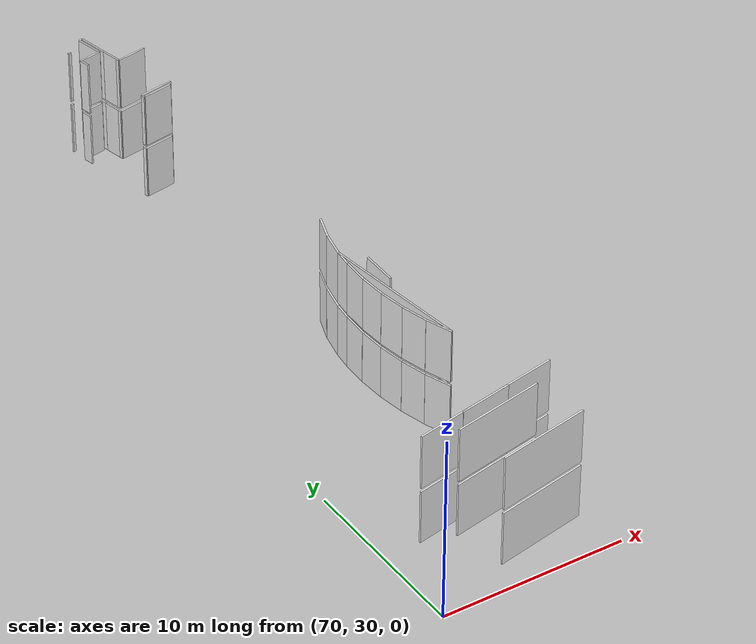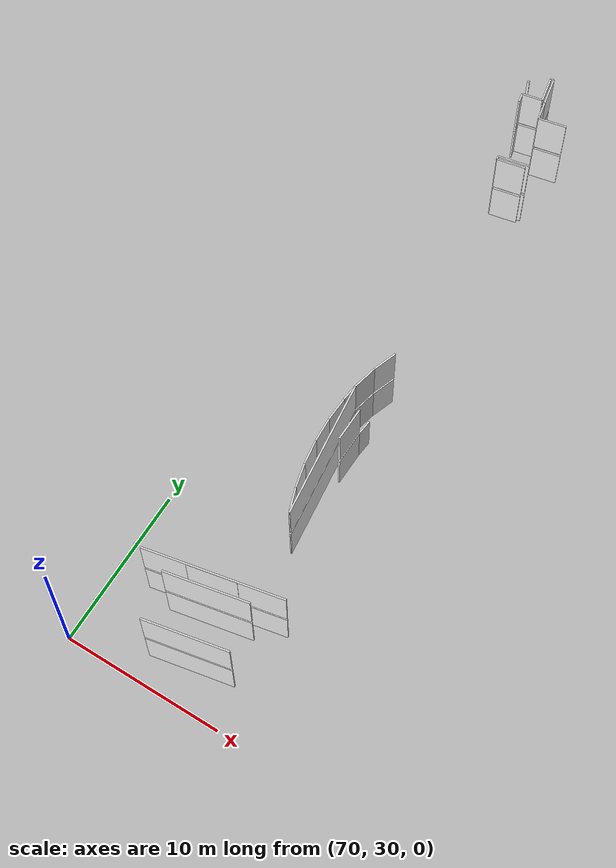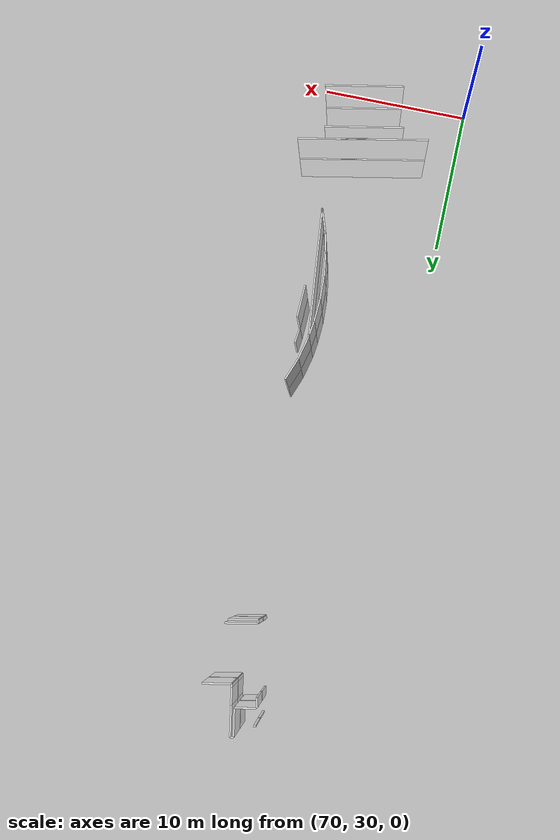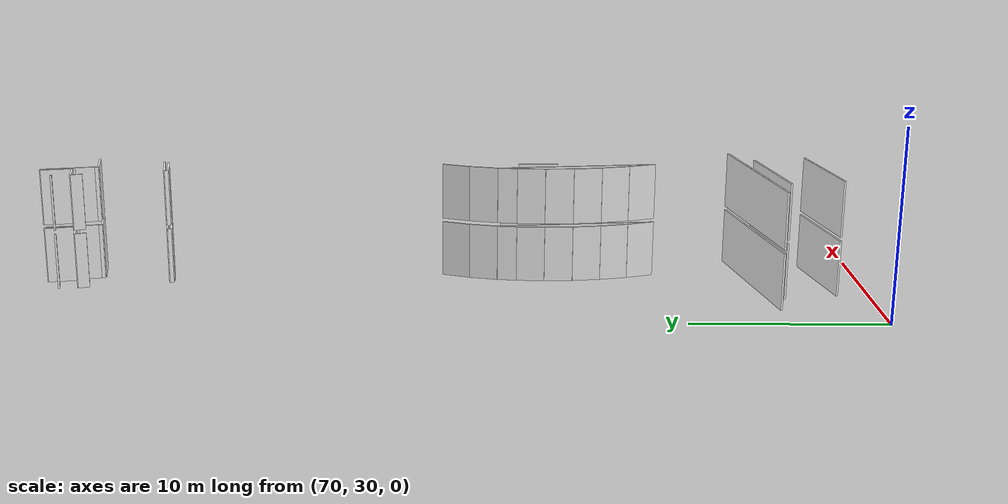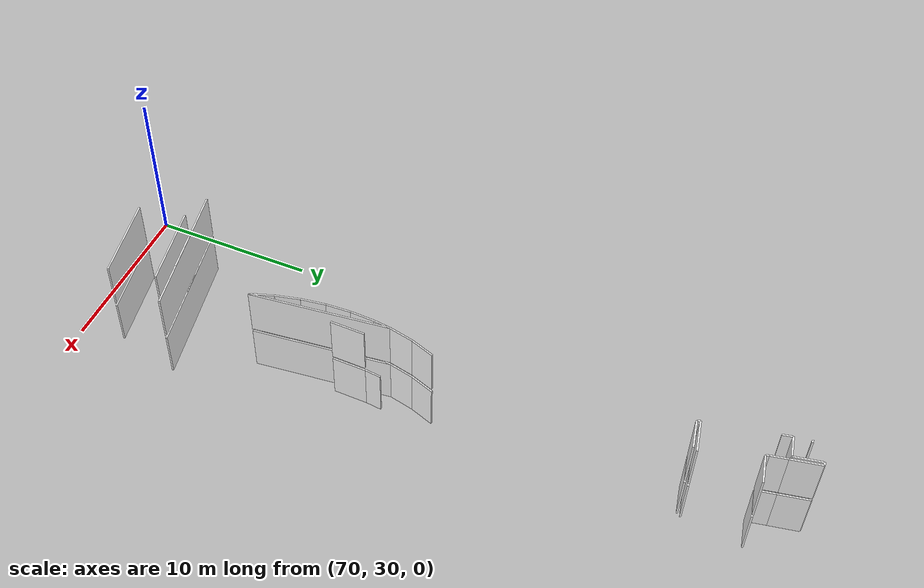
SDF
<sdf version="1.6">
 <world name="default">
  <model name="wall_74.9_72.7_0.0">
   <static>true</static>
   <pose>74.86499999999069 72.69500000006519 1.5 0 0 -2.944197095083166</pose>
   <link name="link">
    <visual name="visual">
     <geometry><box><size>0.15297058539043204 0.1 3</size></box></geometry>
     <material>
      <script><uri>file://media/materials/scripts/gazebo.material</uri><name>Gazebo/White</name></script>
     </material>
    </visual>
   </link>
  </model>
  <model name="wall_75.0_71.4_0.0">
   <static>true</static>
   <pose>75.03999999997905 71.40500000002794 1.5 0 0 1.7714492040023821</pose>
   <link name="link">
    <visual name="visual">
     <geometry><box><size>0.6020797292489833 0.1 3</size></box></geometry>
     <material>
      <script><uri>file://media/materials/scripts/gazebo.material</uri><name>Gazebo/White</name></script>
     </material>
    </visual>
   </link>
  </model>
  <model name="wall_75.6_71.8_0.0">
   <static>true</static>
   <pose>75.61499999999069 71.82500000018626 1.5 0 0 0.1943652660922386</pose>
   <link name="link">
    <visual name="visual">
     <geometry><box><size>1.2943724348298333 0.1 3</size></box></geometry>
     <material>
      <script><uri>file://media/materials/scripts/gazebo.material</uri><name>Gazebo/White</name></script>
     </material>
    </visual>
   </link>
  </model>
  <model name="wall_76.1_72.8_0.0">
   <static>true</static>
   <pose>76.08999999999651 72.75500000012107 1.5 0 0 1.7669971441026713</pose>
   <link name="link">
    <visual name="visual">
     <geometry><box><size>1.6414932225216863 0.1 3</size></box></geometry>
     <material>
      <script><uri>file://media/materials/scripts/gazebo.material</uri><name>Gazebo/White</name></script>
     </material>
    </visual>
   </link>
  </model>
  <model name="wall_77.8_47.2_0.0">
   <static>true</static>
   <pose>77.77999999999884 47.21499999985099 1.5 0 0 1.5516599071002037</pose>
   <link name="link">
    <visual name="visual">
     <geometry><box><size>2.090382739924786 0.1 3</size></box></geometry>
     <material>
      <script><uri>file://media/materials/scripts/gazebo.material</uri><name>Gazebo/White</name></script>
     </material>
    </visual>
   </link>
  </model>
  <model name="wall_77.9_48.7_0.0">
   <static>true</static>
   <pose>77.85000000000582 48.74499999987893 1.5 0 0 1.4680664593621482</pose>
   <link name="link">
    <visual name="visual">
     <geometry><box><size>0.9751410156507998 0.1 3</size></box></geometry>
     <material>
      <script><uri>file://media/materials/scripts/gazebo.material</uri><name>Gazebo/White</name></script>
     </material>
    </visual>
   </link>
  </model>
  <model name="wall_76.0_73.6_0.0">
   <static>true</static>
   <pose>76.02499999999418 73.5800000000745 1.5 0 0 0.20749622662047904</pose>
   <link name="link">
    <visual name="visual">
     <geometry><box><size>0.19416487839942884 0.1 3</size></box></geometry>
     <material>
      <script><uri>file://media/materials/scripts/gazebo.material</uri><name>Gazebo/White</name></script>
     </material>
    </visual>
   </link>
  </model>
  <model name="wall_76.3_72.7_0.0">
   <static>true</static>
   <pose>76.2949999999837 72.71999999997206 1.5 0 0 -1.374493662723798</pose>
   <link name="link">
    <visual name="visual">
     <geometry><box><size>1.7944637084198858 0.1 3</size></box></geometry>
     <material>
      <script><uri>file://media/materials/scripts/gazebo.material</uri><name>Gazebo/White</name></script>
     </material>
    </visual>
   </link>
  </model>
  <model name="wall_76.6_71.3_0.0">
   <static>true</static>
   <pose>76.56999999997788 71.3499999998603 1.5 0 0 -1.3694792184051279</pose>
   <link name="link">
    <visual name="visual">
     <geometry><box><size>1.0001999799880765 0.1 3</size></box></geometry>
     <material>
      <script><uri>file://media/materials/scripts/gazebo.material</uri><name>Gazebo/White</name></script>
     </material>
    </visual>
   </link>
  </model>
  <model name="wall_76.7_70.8_0.0">
   <static>true</static>
   <pose>76.69000000000233 70.76499999989755 1.5 0 0 -1.3633001001126588</pose>
   <link name="link">
    <visual name="visual">
     <geometry><box><size>0.19416487834246976 0.1 3</size></box></geometry>
     <material>
      <script><uri>file://media/materials/scripts/gazebo.material</uri><name>Gazebo/White</name></script>
     </material>
    </visual>
   </link>
  </model>
  <model name="wall_77.6_70.8_0.0">
   <static>true</static>
   <pose>77.57000000000698 70.83999999985099 1.5 0 0 0.1951584270363837</pose>
   <link name="link">
    <visual name="visual">
     <geometry><box><size>1.7532826354591435 0.1 3</size></box></geometry>
     <material>
      <script><uri>file://media/materials/scripts/gazebo.material</uri><name>Gazebo/White</name></script>
     </material>
    </visual>
   </link>
  </model>
  <model name="wall_76.9_67.2_0.0">
   <static>true</static>
   <pose>76.94999999998254 67.18999999994412 1.5 0 0 -2.9481653269346513</pose>
   <link name="link">
    <visual name="visual">
     <geometry><box><size>1.976866206885053 0.1 3</size></box></geometry>
     <material>
      <script><uri>file://media/materials/scripts/gazebo.material</uri><name>Gazebo/White</name></script>
     </material>
    </visual>
   </link>
  </model>
  <model name="wall_76.9_32.1_0.0">
   <static>true</static>
   <pose>76.87999999997555 32.14500000001863 1.5 0 0 -2.948381169699356</pose>
   <link name="link">
    <visual name="visual">
     <geometry><box><size>5.155938323954138 0.1 3</size></box></geometry>
     <material>
      <script><uri>file://media/materials/scripts/gazebo.material</uri><name>Gazebo/White</name></script>
     </material>
    </visual>
   </link>
  </model>
  <model name="wall_76.3_35.0_0.0">
   <static>true</static>
   <pose>76.31500000000233 34.97500000009313 1.5 0 0 0.1935846027304586</pose>
   <link name="link">
    <visual name="visual">
     <geometry><box><size>5.146124755669345 0.1 3</size></box></geometry>
     <material>
      <script><uri>file://media/materials/scripts/gazebo.material</uri><name>Gazebo/White</name></script>
     </material>
    </visual>
   </link>
  </model>
  <model name="wall_76.0_66.9_0.0">
   <static>true</static>
   <pose>76.00500000000466 66.89999999990687 1.5 0 0 -1.3258176636680326</pose>
   <link name="link">
    <visual name="visual">
     <geometry><box><size>0.2061552814728801 0.1 3</size></box></geometry>
     <material>
      <script><uri>file://media/materials/scripts/gazebo.material</uri><name>Gazebo/White</name></script>
     </material>
    </visual>
   </link>
  </model>
  <model name="wall_76.9_67.0_0.0">
   <static>true</static>
   <pose>76.90000000002328 66.96999999997206 1.5 0 0 0.19297081014186676</pose>
   <link name="link">
    <visual name="visual">
     <geometry><box><size>1.77290721702601 0.1 3</size></box></geometry>
     <material>
      <script><uri>file://media/materials/scripts/gazebo.material</uri><name>Gazebo/White</name></script>
     </material>
    </visual>
   </link>
  </model>
  <model name="wall_77.4_51.6_0.0">
   <static>true</static>
   <pose>77.40499999999884 51.610000000102445 1.5 0 0 -1.9111782654188452</pose>
   <link name="link">
    <visual name="visual">
     <geometry><box><size>1.527645246707885 0.1 3</size></box></geometry>
     <material>
      <script><uri>file://media/materials/scripts/gazebo.material</uri><name>Gazebo/White</name></script>
     </material>
    </visual>
   </link>
  </model>
  <model name="wall_77.0_50.1_0.0">
   <static>true</static>
   <pose>76.98500000001513 50.140000000130385 1.5 0 0 -1.7873466317813498</pose>
   <link name="link">
    <visual name="visual">
     <geometry><box><size>1.5358710883439264 0.1 3</size></box></geometry>
     <material>
      <script><uri>file://media/materials/scripts/gazebo.material</uri><name>Gazebo/White</name></script>
     </material>
    </visual>
   </link>
  </model>
  <model name="wall_76.8_48.9_0.0">
   <static>true</static>
   <pose>76.76000000000931 48.875 1.5 0 0 -1.6867783112416597</pose>
   <link name="link">
    <visual name="visual">
     <geometry><box><size>1.0369667306794703 0.1 3</size></box></geometry>
     <material>
      <script><uri>file://media/materials/scripts/gazebo.material</uri><name>Gazebo/White</name></script>
     </material>
    </visual>
   </link>
  </model>
  <model name="wall_76.7_47.6_0.0">
   <static>true</static>
   <pose>76.6700000000128 47.61499999999069 1.5 0 0 -1.6110430385750105</pose>
   <link name="link">
    <visual name="visual">
     <geometry><box><size>1.4912075641164553 0.1 3</size></box></geometry>
     <material>
      <script><uri>file://media/materials/scripts/gazebo.material</uri><name>Gazebo/White</name></script>
     </material>
    </visual>
   </link>
  </model>
  <model name="wall_76.7_46.1_0.0">
   <static>true</static>
   <pose>76.67999999999302 46.11499999999069 1.5 0 0 -1.5178656809449116</pose>
   <link name="link">
    <visual name="visual">
     <geometry><box><size>1.5121177205246188 0.1 3</size></box></geometry>
     <material>
      <script><uri>file://media/materials/scripts/gazebo.material</uri><name>Gazebo/White</name></script>
     </material>
    </visual>
   </link>
  </model>
  <model name="wall_76.8_44.6_0.0">
   <static>true</static>
   <pose>76.8299999999872 44.609999999869615 1.5 0 0 -1.4251679462043203</pose>
   <link name="link">
    <visual name="visual">
     <geometry><box><size>1.5160474926641705 0.1 3</size></box></geometry>
     <material>
      <script><uri>file://media/materials/scripts/gazebo.material</uri><name>Gazebo/White</name></script>
     </material>
    </visual>
   </link>
  </model>
  <model name="wall_77.1_43.1_0.0">
   <static>true</static>
   <pose>77.11999999999534 43.125 1.5 0 0 -1.3306253189027035</pose>
   <link name="link">
    <visual name="visual">
     <geometry><box><size>1.513439790418924 0.1 3</size></box></geometry>
     <material>
      <script><uri>file://media/materials/scripts/gazebo.material</uri><name>Gazebo/White</name></script>
     </material>
    </visual>
   </link>
  </model>
  <model name="wall_77.5_41.7_0.0">
   <static>true</static>
   <pose>77.54999999998836 41.675000000046566 1.5 0 0 -1.2344330339143665</pose>
   <link name="link">
    <visual name="visual">
     <geometry><box><size>1.5148927356349178 0.1 3</size></box></geometry>
     <material>
      <script><uri>file://media/materials/scripts/gazebo.material</uri><name>Gazebo/White</name></script>
     </material>
    </visual>
   </link>
  </model>
  <model name="wall_76.1_35.8_0.0">
   <static>true</static>
   <pose>76.14999999999418 35.79000000003725 1.5 0 0 -2.9468148887829875</pose>
   <link name="link">
    <visual name="visual">
     <geometry><box><size>2.996664812771044 0.1 3</size></box></geometry>
     <material>
      <script><uri>file://media/materials/scripts/gazebo.material</uri><name>Gazebo/White</name></script>
     </material>
    </visual>
   </link>
  </model>
  <model name="wall_76.2_35.8_0.0">
   <static>true</static>
   <pose>76.22000000000116 35.81500000017695 1.5 0 0 0.19577706414235704</pose>
   <link name="link">
    <visual name="visual">
     <geometry><box><size>8.482033954176845 0.1 3</size></box></geometry>
     <material>
      <script><uri>file://media/materials/scripts/gazebo.material</uri><name>Gazebo/White</name></script>
     </material>
    </visual>
   </link>
  </model>
  <model name="wall_77.3_45.2_0.0">
   <static>true</static>
   <pose>77.30999999999767 45.175000000046566 1.5 0 0 1.686528325479706</pose>
   <link name="link">
    <visual name="visual">
     <geometry><box><size>8.486772060258827 0.1 3</size></box></geometry>
     <material>
      <script><uri>file://media/materials/scripts/gazebo.material</uri><name>Gazebo/White</name></script>
     </material>
    </visual>
   </link>
  </model>
  <model name="wall_74.9_72.7_3.2">
   <static>true</static>
   <pose>74.86499999999069 72.69500000006519 4.7 0 0 -2.944197095083166</pose>
   <link name="link">
    <visual name="visual">
     <geometry><box><size>0.15297058539043204 0.1 3</size></box></geometry>
     <material>
      <script><uri>file://media/materials/scripts/gazebo.material</uri><name>Gazebo/White</name></script>
     </material>
    </visual>
   </link>
  </model>
  <model name="wall_75.0_71.4_3.2">
   <static>true</static>
   <pose>75.03999999997905 71.40500000002794 4.7 0 0 1.7714492040023821</pose>
   <link name="link">
    <visual name="visual">
     <geometry><box><size>0.6020797292489833 0.1 3</size></box></geometry>
     <material>
      <script><uri>file://media/materials/scripts/gazebo.material</uri><name>Gazebo/White</name></script>
     </material>
    </visual>
   </link>
  </model>
  <model name="wall_75.6_71.8_3.2">
   <static>true</static>
   <pose>75.61499999999069 71.82500000018626 4.7 0 0 0.1943652660922386</pose>
   <link name="link">
    <visual name="visual">
     <geometry><box><size>1.2943724348298333 0.1 3</size></box></geometry>
     <material>
      <script><uri>file://media/materials/scripts/gazebo.material</uri><name>Gazebo/White</name></script>
     </material>
    </visual>
   </link>
  </model>
  <model name="wall_76.1_72.8_3.2">
   <static>true</static>
   <pose>76.08999999999651 72.75500000012107 4.7 0 0 1.7669971441026713</pose>
   <link name="link">
    <visual name="visual">
     <geometry><box><size>1.6414932225216863 0.1 3</size></box></geometry>
     <material>
      <script><uri>file://media/materials/scripts/gazebo.material</uri><name>Gazebo/White</name></script>
     </material>
    </visual>
   </link>
  </model>
  <model name="wall_77.8_47.2_3.2">
   <static>true</static>
   <pose>77.77999999999884 47.21499999985099 4.7 0 0 1.5516599071002037</pose>
   <link name="link">
    <visual name="visual">
     <geometry><box><size>2.090382739924786 0.1 3</size></box></geometry>
     <material>
      <script><uri>file://media/materials/scripts/gazebo.material</uri><name>Gazebo/White</name></script>
     </material>
    </visual>
   </link>
  </model>
  <model name="wall_76.0_73.6_3.2">
   <static>true</static>
   <pose>76.02499999999418 73.5800000000745 4.7 0 0 0.20749622662047904</pose>
   <link name="link">
    <visual name="visual">
     <geometry><box><size>0.19416487839942884 0.1 3</size></box></geometry>
     <material>
      <script><uri>file://media/materials/scripts/gazebo.material</uri><name>Gazebo/White</name></script>
     </material>
    </visual>
   </link>
  </model>
  <model name="wall_76.3_72.7_3.2">
   <static>true</static>
   <pose>76.2949999999837 72.71999999997206 4.7 0 0 -1.374493662723798</pose>
   <link name="link">
    <visual name="visual">
     <geometry><box><size>1.7944637084198858 0.1 3</size></box></geometry>
     <material>
      <script><uri>file://media/materials/scripts/gazebo.material</uri><name>Gazebo/White</name></script>
     </material>
    </visual>
   </link>
  </model>
  <model name="wall_76.6_71.3_3.2">
   <static>true</static>
   <pose>76.56999999997788 71.3499999998603 4.7 0 0 -1.3694792184051279</pose>
   <link name="link">
    <visual name="visual">
     <geometry><box><size>1.0001999799880765 0.1 3</size></box></geometry>
     <material>
      <script><uri>file://media/materials/scripts/gazebo.material</uri><name>Gazebo/White</name></script>
     </material>
    </visual>
   </link>
  </model>
  <model name="wall_76.7_70.8_3.2">
   <static>true</static>
   <pose>76.69000000000233 70.76499999989755 4.7 0 0 -1.3633001001126588</pose>
   <link name="link">
    <visual name="visual">
     <geometry><box><size>0.19416487834246976 0.1 3</size></box></geometry>
     <material>
      <script><uri>file://media/materials/scripts/gazebo.material</uri><name>Gazebo/White</name></script>
     </material>
    </visual>
   </link>
  </model>
  <model name="wall_77.6_70.8_3.2">
   <static>true</static>
   <pose>77.57000000000698 70.83999999985099 4.7 0 0 0.1951584270363837</pose>
   <link name="link">
    <visual name="visual">
     <geometry><box><size>1.7532826354591435 0.1 3</size></box></geometry>
     <material>
      <script><uri>file://media/materials/scripts/gazebo.material</uri><name>Gazebo/White</name></script>
     </material>
    </visual>
   </link>
  </model>
  <model name="wall_76.9_67.2_3.2">
   <static>true</static>
   <pose>76.94999999998254 67.18999999994412 4.7 0 0 -2.9481653269346513</pose>
   <link name="link">
    <visual name="visual">
     <geometry><box><size>1.976866206885053 0.1 3</size></box></geometry>
     <material>
      <script><uri>file://media/materials/scripts/gazebo.material</uri><name>Gazebo/White</name></script>
     </material>
    </visual>
   </link>
  </model>
  <model name="wall_76.9_32.1_3.2">
   <static>true</static>
   <pose>76.87999999997555 32.14500000001863 4.7 0 0 -2.948381169699356</pose>
   <link name="link">
    <visual name="visual">
     <geometry><box><size>5.155938323954138 0.1 3</size></box></geometry>
     <material>
      <script><uri>file://media/materials/scripts/gazebo.material</uri><name>Gazebo/White</name></script>
     </material>
    </visual>
   </link>
  </model>
  <model name="wall_76.3_35.0_3.2">
   <static>true</static>
   <pose>76.31500000000233 34.97500000009313 4.7 0 0 0.1935846027304586</pose>
   <link name="link">
    <visual name="visual">
     <geometry><box><size>5.146124755669345 0.1 3</size></box></geometry>
     <material>
      <script><uri>file://media/materials/scripts/gazebo.material</uri><name>Gazebo/White</name></script>
     </material>
    </visual>
   </link>
  </model>
  <model name="wall_76.0_66.9_3.2">
   <static>true</static>
   <pose>76.00500000000466 66.89999999990687 4.7 0 0 -1.3258176636680326</pose>
   <link name="link">
    <visual name="visual">
     <geometry><box><size>0.2061552814728801 0.1 3</size></box></geometry>
     <material>
      <script><uri>file://media/materials/scripts/gazebo.material</uri><name>Gazebo/White</name></script>
     </material>
    </visual>
   </link>
  </model>
  <model name="wall_76.9_67.0_3.2">
   <static>true</static>
   <pose>76.90000000002328 66.96999999997206 4.7 0 0 0.19297081014186676</pose>
   <link name="link">
    <visual name="visual">
     <geometry><box><size>1.77290721702601 0.1 3</size></box></geometry>
     <material>
      <script><uri>file://media/materials/scripts/gazebo.material</uri><name>Gazebo/White</name></script>
     </material>
    </visual>
   </link>
  </model>
  <model name="wall_77.4_51.6_3.2">
   <static>true</static>
   <pose>77.40499999999884 51.610000000102445 4.7 0 0 -1.9111782654188452</pose>
   <link name="link">
    <visual name="visual">
     <geometry><box><size>1.527645246707885 0.1 3</size></box></geometry>
     <material>
      <script><uri>file://media/materials/scripts/gazebo.material</uri><name>Gazebo/White</name></script>
     </material>
    </visual>
   </link>
  </model>
  <model name="wall_77.0_50.1_3.2">
   <static>true</static>
   <pose>76.98500000001513 50.140000000130385 4.7 0 0 -1.7873466317813498</pose>
   <link name="link">
    <visual name="visual">
     <geometry><box><size>1.5358710883439264 0.1 3</size></box></geometry>
     <material>
      <script><uri>file://media/materials/scripts/gazebo.material</uri><name>Gazebo/White</name></script>
     </material>
    </visual>
   </link>
  </model>
  <model name="wall_76.8_48.9_3.2">
   <static>true</static>
   <pose>76.76000000000931 48.875 4.7 0 0 -1.6867783112416597</pose>
   <link name="link">
    <visual name="visual">
     <geometry><box><size>1.0369667306794703 0.1 3</size></box></geometry>
     <material>
      <script><uri>file://media/materials/scripts/gazebo.material</uri><name>Gazebo/White</name></script>
     </material>
    </visual>
   </link>
  </model>
  <model name="wall_76.7_47.6_3.2">
   <static>true</static>
   <pose>76.6700000000128 47.61499999999069 4.7 0 0 -1.6110430385750105</pose>
   <link name="link">
    <visual name="visual">
     <geometry><box><size>1.4912075641164553 0.1 3</size></box></geometry>
     <material>
      <script><uri>file://media/materials/scripts/gazebo.material</uri><name>Gazebo/White</name></script>
     </material>
    </visual>
   </link>
  </model>
  <model name="wall_76.7_46.1_3.2">
   <static>true</static>
   <pose>76.67999999999302 46.11499999999069 4.7 0 0 -1.5178656809449116</pose>
   <link name="link">
    <visual name="visual">
     <geometry><box><size>1.5121177205246188 0.1 3</size></box></geometry>
     <material>
      <script><uri>file://media/materials/scripts/gazebo.material</uri><name>Gazebo/White</name></script>
     </material>
    </visual>
   </link>
  </model>
  <model name="wall_76.8_44.6_3.2">
   <static>true</static>
   <pose>76.8299999999872 44.609999999869615 4.7 0 0 -1.4251679462043203</pose>
   <link name="link">
    <visual name="visual">
     <geometry><box><size>1.5160474926641705 0.1 3</size></box></geometry>
     <material>
      <script><uri>file://media/materials/scripts/gazebo.material</uri><name>Gazebo/White</name></script>
     </material>
    </visual>
   </link>
  </model>
  <model name="wall_77.1_43.1_3.2">
   <static>true</static>
   <pose>77.11999999999534 43.125 4.7 0 0 -1.3306253189027035</pose>
   <link name="link">
    <visual name="visual">
     <geometry><box><size>1.513439790418924 0.1 3</size></box></geometry>
     <material>
      <script><uri>file://media/materials/scripts/gazebo.material</uri><name>Gazebo/White</name></script>
     </material>
    </visual>
   </link>
  </model>
  <model name="wall_77.5_41.7_3.2">
   <static>true</static>
   <pose>77.54999999998836 41.675000000046566 4.7 0 0 -1.2344330339143665</pose>
   <link name="link">
    <visual name="visual">
     <geometry><box><size>1.5148927356349178 0.1 3</size></box></geometry>
     <material>
      <script><uri>file://media/materials/scripts/gazebo.material</uri><name>Gazebo/White</name></script>
     </material>
    </visual>
   </link>
  </model>
  <model name="wall_76.1_35.8_3.2">
   <static>true</static>
   <pose>76.14999999999418 35.79000000003725 4.7 0 0 -2.9468148887829875</pose>
   <link name="link">
    <visual name="visual">
     <geometry><box><size>2.996664812771044 0.1 3</size></box></geometry>
     <material>
      <script><uri>file://media/materials/scripts/gazebo.material</uri><name>Gazebo/White</name></script>
     </material>
    </visual>
   </link>
  </model>
  <model name="wall_76.2_35.8_3.2">
   <static>true</static>
   <pose>76.22000000000116 35.81500000017695 4.7 0 0 0.19577706414235704</pose>
   <link name="link">
    <visual name="visual">
     <geometry><box><size>8.482033954176845 0.1 3</size></box></geometry>
     <material>
      <script><uri>file://media/materials/scripts/gazebo.material</uri><name>Gazebo/White</name></script>
     </material>
    </visual>
   </link>
  </model>
  <model name="wall_77.3_45.2_3.2">
   <static>true</static>
   <pose>77.30999999999767 45.175000000046566 4.7 0 0 1.686528325479706</pose>
   <link name="link">
    <visual name="visual">
     <geometry><box><size>8.486772060258827 0.1 3</size></box></geometry>
     <material>
      <script><uri>file://media/materials/scripts/gazebo.material</uri><name>Gazebo/White</name></script>
     </material>
    </visual>
   </link>
  </model>
 </world>
</sdf>
